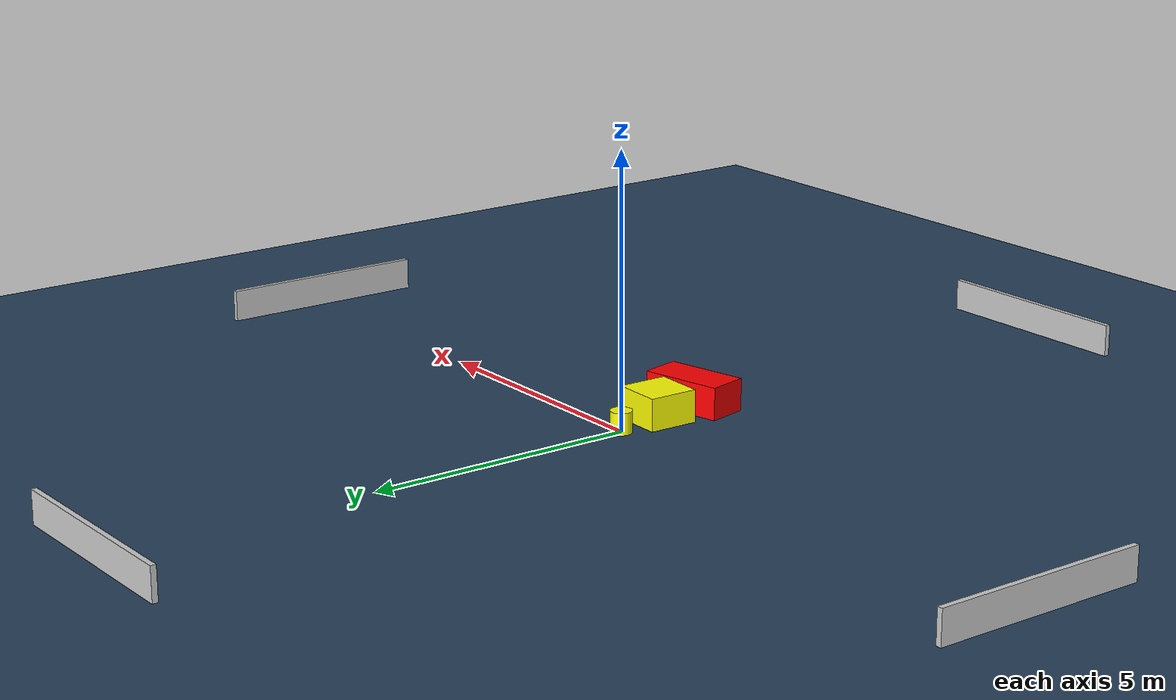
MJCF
<?xml version="1.0" ?>
<mujoco model="generated_environment">
  <option timestep="0.01" integrator="RK4" cone="elliptic"/>
  <default>
    <geom density="1"/>
  </default>
  <asset>
    <texture builtin="gradient" height="3072" name="skybox" rgb1="0.3 0.5 0.7" rgb2="0 0 0" type="skybox" width="512"/>
    <texture builtin="checker" height="300" name="groundplane" rgb1="0.2 0.3 0.4" rgb2="0.1 0.2 0.3" type="2d" width="300"/>
    <material name="groundplane" reflectance="0.2" texrepeat="5 5" texture="groundplane"/>
  </asset>
  <worldbody>
    <light dir="0 0 -1" directional="true" pos="0 0 1.5"/>
    <geom condim="3" friction="0.5 0.005 0.001" material="groundplane" name="floor" pos="0 0 0" size="0 0 0.05" type="plane"/>
    <body name="walls">
      <geom name="wall_1" condim="4" pos="-10.0 0.0 0.3" rgba="0.800000011920929 0.800000011920929 0.800000011920929 1.0" size="0.05 2.0 0.3" type="box"/>
      <geom name="wall_2" condim="4" pos="10.0 0.0 0.3" rgba="0.800000011920929 0.800000011920929 0.800000011920929 1.0" size="0.05 2.0 0.3" type="box"/>
      <geom name="wall_3" condim="4" pos="0.0 -10.0 0.3" rgba="0.800000011920929 0.800000011920929 0.800000011920929 1.0" size="2.0 0.05 0.3" type="box"/>
      <geom name="wall_4" condim="4" pos="0.0 10.0 0.3" rgba="0.800000011920929 0.800000011920929 0.800000011920929 1.0" size="2.0 0.05 0.3" type="box"/>
    </body>
    <body name="robot">
      <joint name="joint_x" type="slide" pos="0 0 0" axis="1 0 0"/>
      <joint name="joint_y" type="slide" pos="0 0 0" axis="0 1 0"/>
      <geom name="robot" type="cylinder" pos="0.0 0.0 0.2" size="0.2 0.2 0.0" mass="5.0" friction="1.0 0.005 0.0001" condim="4" rgba="1.0 1.0 0.0 1.0"/>
    </body>
    <body name="obstacle_1_movable">
      <geom name="obstacle_1_movable" condim="4" pos="0.12123470018554622 -0.8991502617979122 0.3" euler="0 0 268.35478572252845" friction="0.0 0.005 0.001" rgba="1.0 1.0 0.0 1.0" size="0.4638674395612084 0.461465707678731 0.3" type="box" mass="0.1"/>
      <joint type="free"/>
    </body>
    <body name="obstacle_2_static">
      <geom name="obstacle_2_static" condim="4" pos="0.33424830596198407 -1.8660076889963488 0.3" euler="0 0 12.564200843111518" friction="0.0 0.005 0.001" rgba="1.0 0.0 0.0 1.0" size="0.7732726327899075 0.3776447700853489 0.3" type="box"/>
    </body>
  </worldbody>
  <actuator>
    <motor name="actuator_x" joint="joint_x" gear="1" ctrlrange="-1 1"/>
    <motor name="actuator_y" joint="joint_y" gear="1" ctrlrange="-1 1"/>
  </actuator>
</mujoco>
